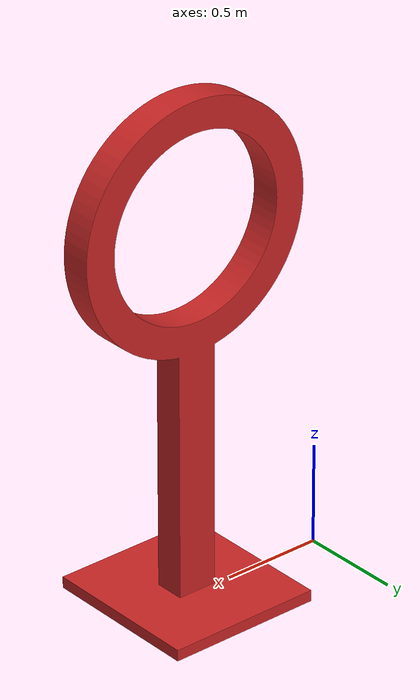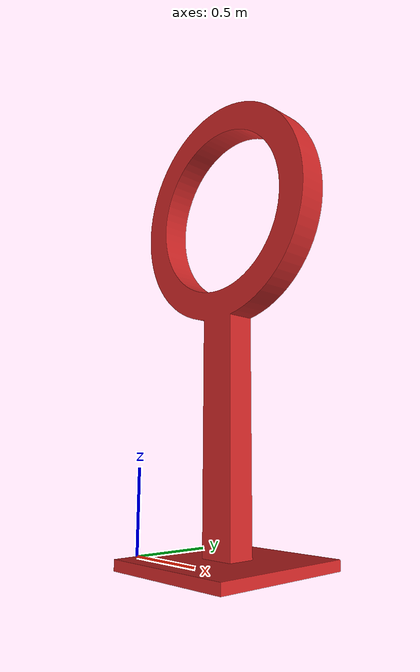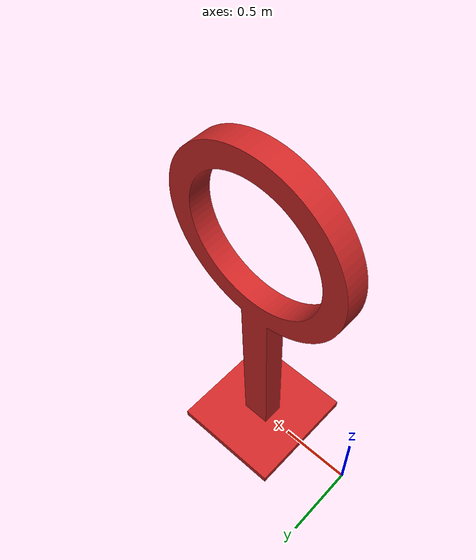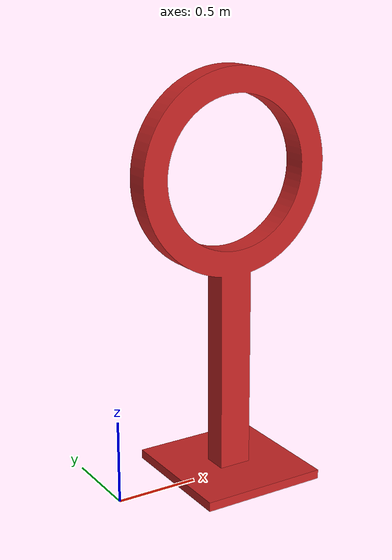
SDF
<?xml version="1.0" ?>
<sdf version="1.6">
  <model name="circle_gate_c">
  <static>1</static>
    <link name="link">
      <inertial>
        <mass>10.0</mass>
        <inertia>
          <ixx>10.0</ixx>
          <ixy>0.0</ixy>
          <ixz>0.0</ixz>
          <iyy>10.0</iyy>
          <iyz>0.0</iyz>
          <izz>10.0</izz>
        </inertia>
      </inertial>
      <collision name="collision">
        <pose>0 0 0 0 0 0</pose>
        <geometry>
          <mesh>
            <uri>model://circle_gate_c/meshes/circle_gate_c.stl</uri>
          </mesh>
        </geometry>
      </collision>
      <visual name="visual">
        <pose>0 0 0 0 0 0</pose>
        <geometry>
          <mesh>
            <uri>model://circle_gate_c/meshes/circle_gate_c.stl</uri>
            <scale>0.001 0.001 0.001</scale>
          </mesh>
        </geometry>
        <material>
          <script>
            <uri>file://media/materials/scripts/gazebo.material</uri>
            <name>Gazebo/Red</name>
          </script>
       </material>
      </visual>
    </link>
  </model>
</sdf>
